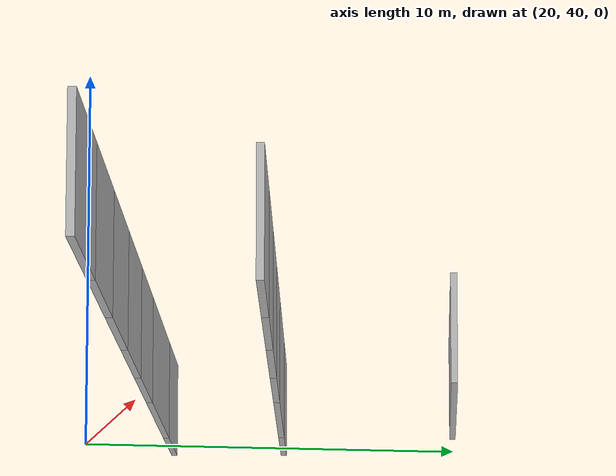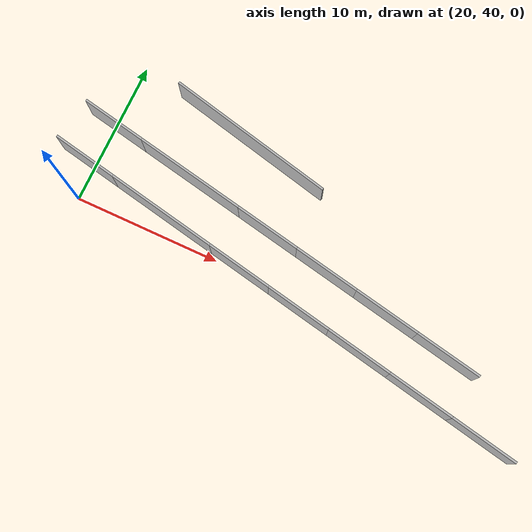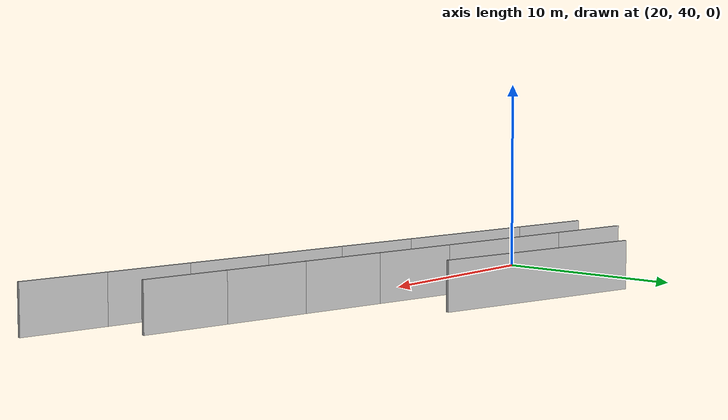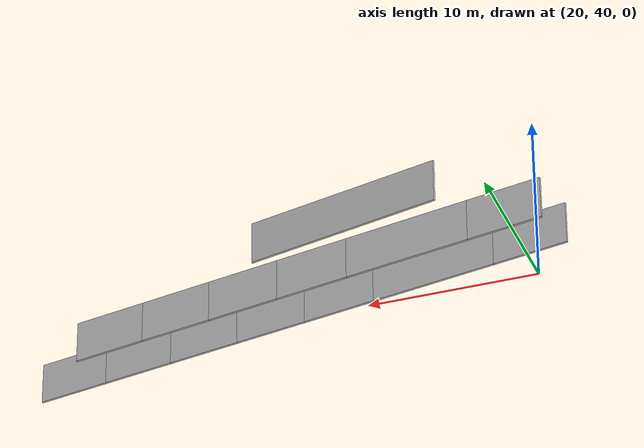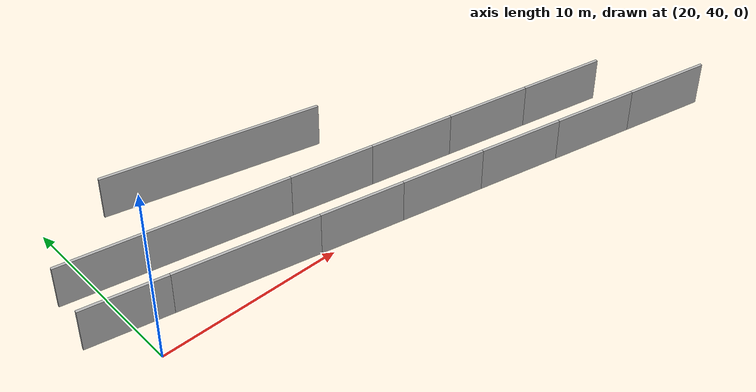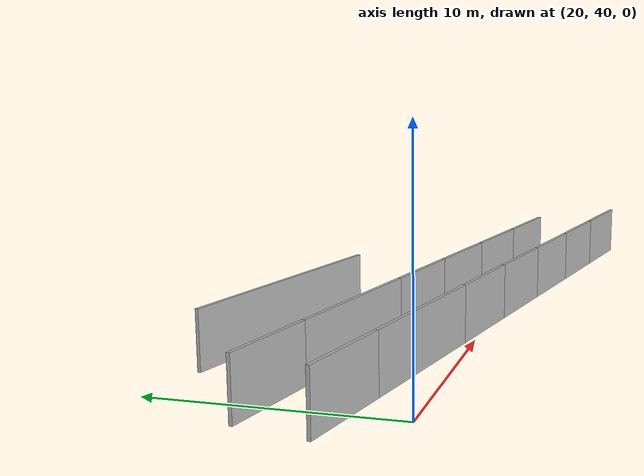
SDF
<?xml version="1.0" ?>
<sdf version="1.6">
  <model name="sps_1005">
    <pose frame="">0 0 0 0 -0 0</pose>
    <static>1</static>
    <self_collide>0</self_collide>
    <allow_auto_disable>0</allow_auto_disable>
    <link name="Wall515">
      <kinematic>0</kinematic>
      <gravity>1</gravity>
      <self_collide>0</self_collide>
      <collision name="collision">
        <geometry>
          <box>
            <size>11.7378 0.15 2.5</size>
          </box>
        </geometry>
        <pose frame="">0 0 0 0 -0 0</pose>
      </collision>
      <visual name="visual">
        <geometry>
          <box>
            <size>11.7378 0.15 2.5</size>
          </box>
        </geometry>
        <pose frame="">0 0 0 0 -0 0</pose>
        <cast_shadows>1</cast_shadows>
        <transparency>0.0</transparency>
      </visual>
      <pose frame="">28.7536 47.9346 1.25 0 -0 2.91274</pose>
    </link>
    <link name="Wall2669">
      <kinematic>0</kinematic>
      <gravity>1</gravity>
      <self_collide>0</self_collide>
      <collision name="collision">
        <geometry>
          <box>
            <size>4.52823 0.15 2.5</size>
          </box>
        </geometry>
        <pose frame="">0 0 0 0 -0 0</pose>
      </collision>
      <visual name="visual">
        <geometry>
          <box>
            <size>4.52823 0.15 2.5</size>
          </box>
        </geometry>
        <pose frame="">0 0 0 0 -0 0</pose>
        <cast_shadows>1</cast_shadows>
        <transparency>0.0</transparency>
      </visual>
      <pose frame="">19.7862 42.2946 1.25 0 0 -0.192931</pose>
    </link>
    <link name="Wall2670">
      <kinematic>0</kinematic>
      <gravity>1</gravity>
      <self_collide>0</self_collide>
      <collision name="collision">
        <geometry>
          <box>
            <size>7.66431 0.15 2.5</size>
          </box>
        </geometry>
        <pose frame="">0 0 0 0 -0 0</pose>
      </collision>
      <visual name="visual">
        <geometry>
          <box>
            <size>7.66431 0.15 2.5</size>
          </box>
        </geometry>
        <pose frame="">0 0 0 0 -0 0</pose>
        <cast_shadows>1</cast_shadows>
        <transparency>0.0</transparency>
      </visual>
      <pose frame="">25.7695 41.1265 1.25 0 0 -0.19273</pose>
    </link>
    <link name="Wall2671">
      <kinematic>0</kinematic>
      <gravity>1</gravity>
      <self_collide>0</self_collide>
      <collision name="collision">
        <geometry>
          <box>
            <size>4.52638 0.15 2.5</size>
          </box>
        </geometry>
        <pose frame="">0 0 0 0 -0 0</pose>
      </collision>
      <visual name="visual">
        <geometry>
          <box>
            <size>4.52638 0.15 2.5</size>
          </box>
        </geometry>
        <pose frame="">0 0 0 0 -0 0</pose>
        <cast_shadows>1</cast_shadows>
        <transparency>0.0</transparency>
      </visual>
      <pose frame="">31.7519 39.959 1.25 0 0 -0.192736</pose>
    </link>
    <link name="Wall2672">
      <kinematic>0</kinematic>
      <gravity>1</gravity>
      <self_collide>0</self_collide>
      <collision name="collision">
        <geometry>
          <box>
            <size>4.52647 0.15 2.5</size>
          </box>
        </geometry>
        <pose frame="">0 0 0 0 -0 0</pose>
      </collision>
      <visual name="visual">
        <geometry>
          <box>
            <size>4.52647 0.15 2.5</size>
          </box>
        </geometry>
        <pose frame="">0 0 0 0 -0 0</pose>
        <cast_shadows>1</cast_shadows>
        <transparency>0.0</transparency>
      </visual>
      <pose frame="">36.1945 39.0919 1.25 0 0 -0.192773</pose>
    </link>
    <link name="Wall2673">
      <kinematic>0</kinematic>
      <gravity>1</gravity>
      <self_collide>0</self_collide>
      <collision name="collision">
        <geometry>
          <box>
            <size>4.52893 0.15 2.5</size>
          </box>
        </geometry>
        <pose frame="">0 0 0 0 -0 0</pose>
      </collision>
      <visual name="visual">
        <geometry>
          <box>
            <size>4.52893 0.15 2.5</size>
          </box>
        </geometry>
        <pose frame="">0 0 0 0 -0 0</pose>
        <cast_shadows>1</cast_shadows>
        <transparency>0.0</transparency>
      </visual>
      <pose frame="">40.6384 38.2244 1.25 0 0 -0.192805</pose>
    </link>
    <link name="Wall2674">
      <kinematic>0</kinematic>
      <gravity>1</gravity>
      <self_collide>0</self_collide>
      <collision name="collision">
        <geometry>
          <box>
            <size>4.52664 0.15 2.5</size>
          </box>
        </geometry>
        <pose frame="">0 0 0 0 -0 0</pose>
      </collision>
      <visual name="visual">
        <geometry>
          <box>
            <size>4.52664 0.15 2.5</size>
          </box>
        </geometry>
        <pose frame="">0 0 0 0 -0 0</pose>
        <cast_shadows>1</cast_shadows>
        <transparency>0.0</transparency>
      </visual>
      <pose frame="">45.0824 37.3574 1.25 0 0 -0.192546</pose>
    </link>
    <link name="Wall2675">
      <kinematic>0</kinematic>
      <gravity>1</gravity>
      <self_collide>0</self_collide>
      <collision name="collision">
        <geometry>
          <box>
            <size>4.52692 0.15 2.5</size>
          </box>
        </geometry>
        <pose frame="">0 0 0 0 -0 0</pose>
      </collision>
      <visual name="visual">
        <geometry>
          <box>
            <size>4.52692 0.15 2.5</size>
          </box>
        </geometry>
        <pose frame="">0 0 0 0 -0 0</pose>
        <cast_shadows>1</cast_shadows>
        <transparency>0.0</transparency>
      </visual>
      <pose frame="">49.5253 36.49 1.25 0 0 -0.19307</pose>
    </link>
    <link name="Wall3512">
      <kinematic>0</kinematic>
      <gravity>1</gravity>
      <self_collide>0</self_collide>
      <collision name="collision">
        <geometry>
          <box>
            <size>4.52826 0.15 2.5</size>
          </box>
        </geometry>
        <pose frame="">0 0 0 0 -0 0</pose>
      </collision>
      <visual name="visual">
        <geometry>
          <box>
            <size>4.52826 0.15 2.5</size>
          </box>
        </geometry>
        <pose frame="">0 0 0 0 -0 0</pose>
        <cast_shadows>1</cast_shadows>
        <transparency>0.0</transparency>
      </visual>
      <pose frame="">20.3612 45.2391 1.25 0 0 -0.192971</pose>
    </link>
    <link name="Wall3513">
      <kinematic>0</kinematic>
      <gravity>1</gravity>
      <self_collide>0</self_collide>
      <collision name="collision">
        <geometry>
          <box>
            <size>7.66407 0.15 2.5</size>
          </box>
        </geometry>
        <pose frame="">0 0 0 0 -0 0</pose>
      </collision>
      <visual name="visual">
        <geometry>
          <box>
            <size>7.66407 0.15 2.5</size>
          </box>
        </geometry>
        <pose frame="">0 0 0 0 -0 0</pose>
        <cast_shadows>1</cast_shadows>
        <transparency>0.0</transparency>
      </visual>
      <pose frame="">26.3444 44.0709 1.25 0 0 -0.192737</pose>
    </link>
    <link name="Wall3514">
      <kinematic>0</kinematic>
      <gravity>1</gravity>
      <self_collide>0</self_collide>
      <collision name="collision">
        <geometry>
          <box>
            <size>4.52647 0.15 2.5</size>
          </box>
        </geometry>
        <pose frame="">0 0 0 0 -0 0</pose>
      </collision>
      <visual name="visual">
        <geometry>
          <box>
            <size>4.52647 0.15 2.5</size>
          </box>
        </geometry>
        <pose frame="">0 0 0 0 -0 0</pose>
        <cast_shadows>1</cast_shadows>
        <transparency>0.0</transparency>
      </visual>
      <pose frame="">32.3267 42.9033 1.25 0 0 -0.192773</pose>
    </link>
    <link name="Wall3515">
      <kinematic>0</kinematic>
      <gravity>1</gravity>
      <self_collide>0</self_collide>
      <collision name="collision">
        <geometry>
          <box>
            <size>4.52647 0.15 2.5</size>
          </box>
        </geometry>
        <pose frame="">0 0 0 0 -0 0</pose>
      </collision>
      <visual name="visual">
        <geometry>
          <box>
            <size>4.52647 0.15 2.5</size>
          </box>
        </geometry>
        <pose frame="">0 0 0 0 -0 0</pose>
        <cast_shadows>1</cast_shadows>
        <transparency>0.0</transparency>
      </visual>
      <pose frame="">36.7694 42.0361 1.25 0 0 -0.192773</pose>
    </link>
    <link name="Wall3516">
      <kinematic>0</kinematic>
      <gravity>1</gravity>
      <self_collide>0</self_collide>
      <collision name="collision">
        <geometry>
          <box>
            <size>4.52829 0.15 2.5</size>
          </box>
        </geometry>
        <pose frame="">0 0 0 0 -0 0</pose>
      </collision>
      <visual name="visual">
        <geometry>
          <box>
            <size>4.52829 0.15 2.5</size>
          </box>
        </geometry>
        <pose frame="">0 0 0 0 -0 0</pose>
        <cast_shadows>1</cast_shadows>
        <transparency>0.0</transparency>
      </visual>
      <pose frame="">41.2129 41.1687 1.25 0 0 -0.192791</pose>
    </link>
    <link name="Wall3517">
      <kinematic>0</kinematic>
      <gravity>1</gravity>
      <self_collide>0</self_collide>
      <collision name="collision">
        <geometry>
          <box>
            <size>4.52724 0.15 2.5</size>
          </box>
        </geometry>
        <pose frame="">0 0 0 0 -0 0</pose>
      </collision>
      <visual name="visual">
        <geometry>
          <box>
            <size>4.52724 0.15 2.5</size>
          </box>
        </geometry>
        <pose frame="">0 0 0 0 -0 0</pose>
        <cast_shadows>1</cast_shadows>
        <transparency>0.0</transparency>
      </visual>
      <pose frame="">45.6569 40.3018 1.25 0 0 -0.19252</pose>
    </link>
  </model>
</sdf>
